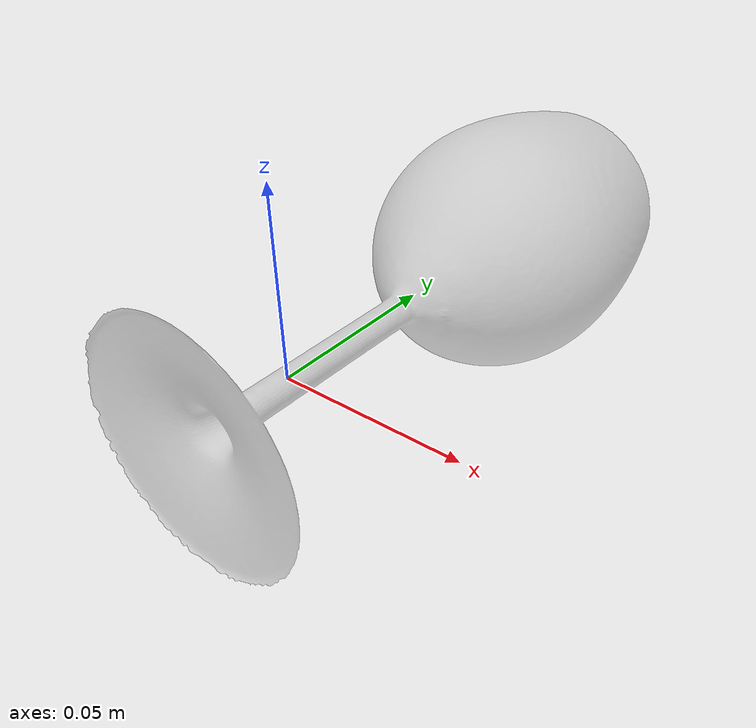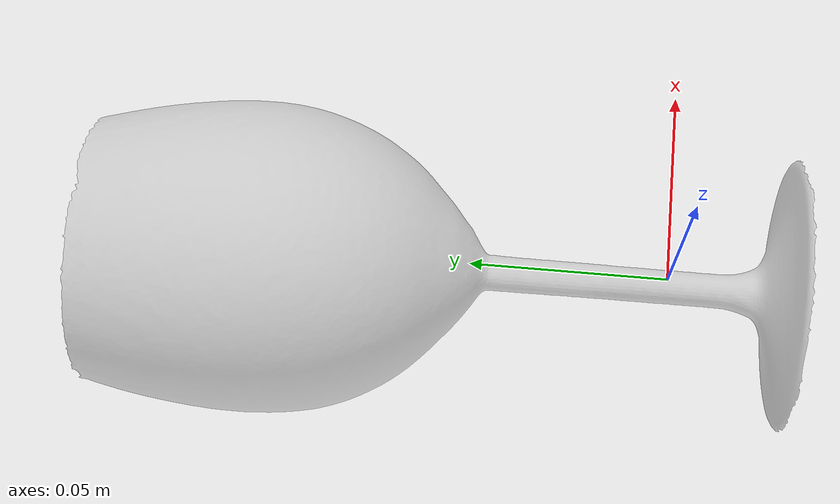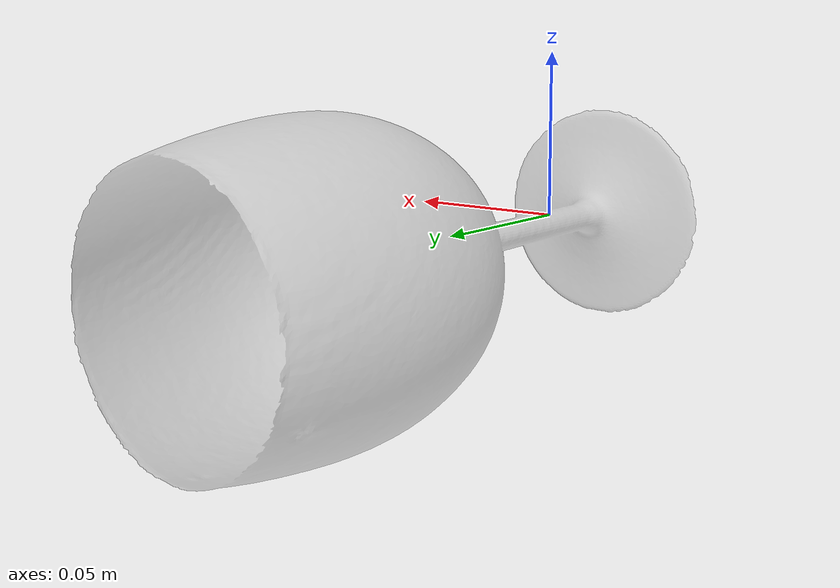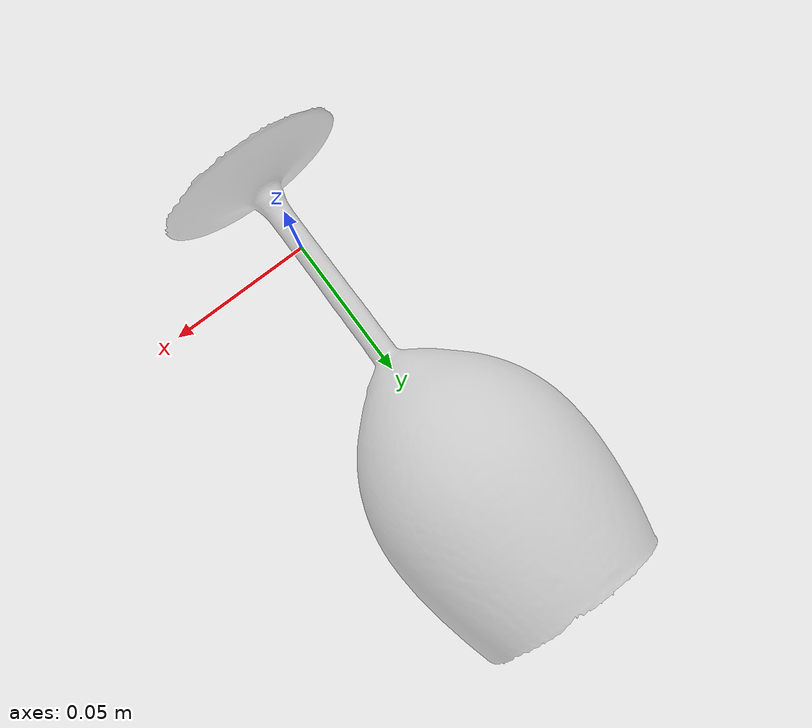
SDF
<?xml version='1.0'?>
<sdf version="1.4">
  <model name="Wineglass">
    <static>false</static>
    <link name="link">
      <inertial>
        <pose>-0.0013995788718887414 0.06035724001434162 -0.003181657721563916 -1.594249997841386 -1.0582293847017616 0.029083575922983527</pose>
        <mass>0.03554943329306539</mass>
        <inertia>
          <ixx>0.0002108319314716228</ixx>
          <ixy>4.179059154801671e-21</ixy>
          <ixz>-1.0938265916454352e-20</ixz>
          <iyy>0.00021062758432309202</iyy>
          <iyz>1.0011133654872276e-21</iyz>
          <izz>5.201983964566207e-05</izz>
        </inertia>
      </inertial>
      <collision name="collision">
        <geometry>
          <mesh>
            <!-- Use a downsampled mesh for collisions -->
            <uri>model:///Wineglass/Wineglass_250_collision.obj</uri>
	        </mesh>
        </geometry>
        <surface>
      </surface>
      </collision>
      <visual name="visual">
        <geometry>
          <mesh>
            <uri>model:///Wineglass/Wineglass_25k_tex.obj</uri>
	        </mesh>
        </geometry>
        <material>
          <script>
            <uri>model:///Wineglass/Wineglass.material</uri>
            <name>Wineglass</name>
          </script>
        </material>
      </visual>
    </link>
  </model>
</sdf>
